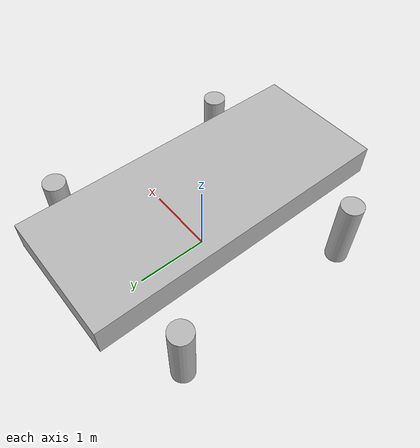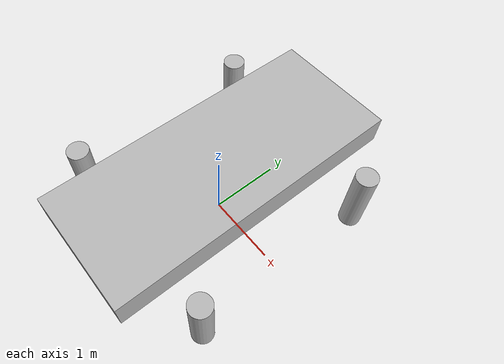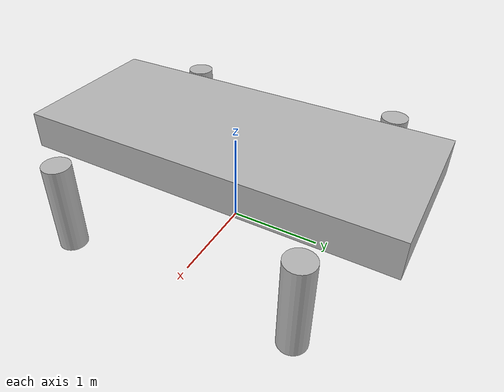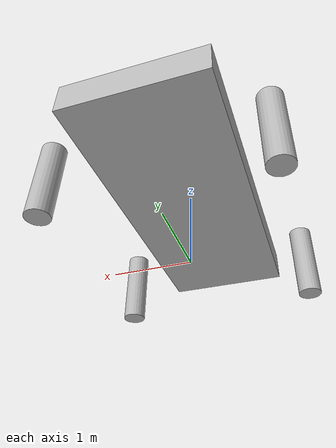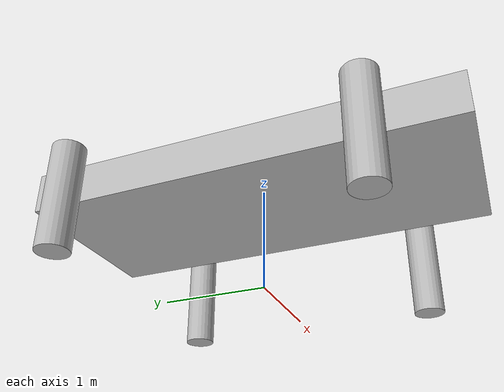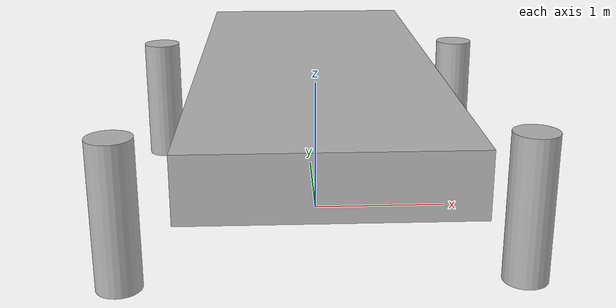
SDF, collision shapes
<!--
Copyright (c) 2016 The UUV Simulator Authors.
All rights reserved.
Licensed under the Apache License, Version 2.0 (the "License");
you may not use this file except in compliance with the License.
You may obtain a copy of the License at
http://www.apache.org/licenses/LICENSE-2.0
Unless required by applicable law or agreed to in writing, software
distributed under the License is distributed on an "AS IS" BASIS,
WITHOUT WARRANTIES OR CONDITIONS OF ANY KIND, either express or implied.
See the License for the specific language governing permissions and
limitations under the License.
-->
<?xml version="1.0" ?>
<sdf version="1.5">
  <model name="sdp">
    <static>true</static>
    <link name="link">
      <visual name="Visual">
        <cast_shadows>true</cast_shadows>
        <pose>0 0 0 0 0 0</pose>
        <geometry>
        <mesh><uri>model://models/static_assets/sdp/meshes/equinor_dock.dae</uri></mesh>
        </geometry>
      </visual>
      <collision name="collision_plate">
        <pose>0 0 0.97 0 0 0</pose>
        <geometry>
	  <box>
            <size>1.7 4.05 0.4</size>
	  </box>
        </geometry>
      </collision>
      <collision name="collision_leg1">
        <pose>1.295 1.32 0.52 0 0 0</pose>
        <geometry>
	  <cylinder>
	    <radius>0.15</radius>
	    <length>1</length>
	  </cylinder>
        </geometry>
      </collision>
      <collision name="collision_leg2">
        <pose>1.295 -1.28 0.52 0 0 0</pose>
        <geometry>
	  <cylinder>
	    <radius>0.15</radius>
	    <length>1</length>
	  </cylinder>
        </geometry>
      </collision>
      <collision name="Collision_leg3">
        <pose>-1.295 -1.28 0.52 0 0 0</pose>
        <geometry>
	  <cylinder>
	    <radius>0.15</radius>
	    <length>1</length>
	  </cylinder>
        </geometry>
      </collision>
      <collision name="Collision_leg4">
        <pose>-1.295 1.32 0.52 0 0 0</pose>
        <geometry>
	  <cylinder>
	    <radius>0.15</radius>
	    <length>1</length>
	  </cylinder>
        </geometry>
      </collision>
    </link>
  </model>
</sdf>
